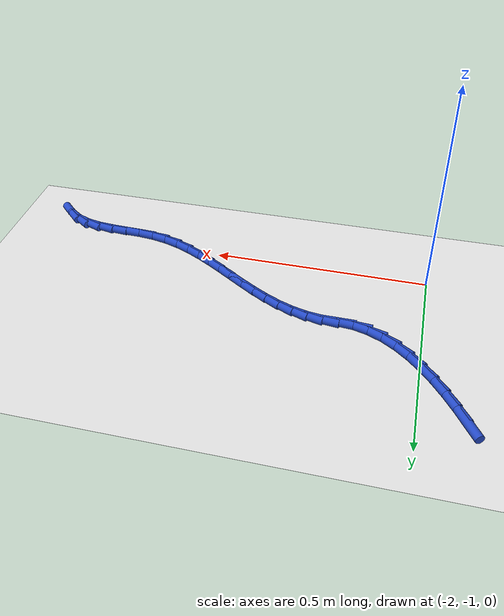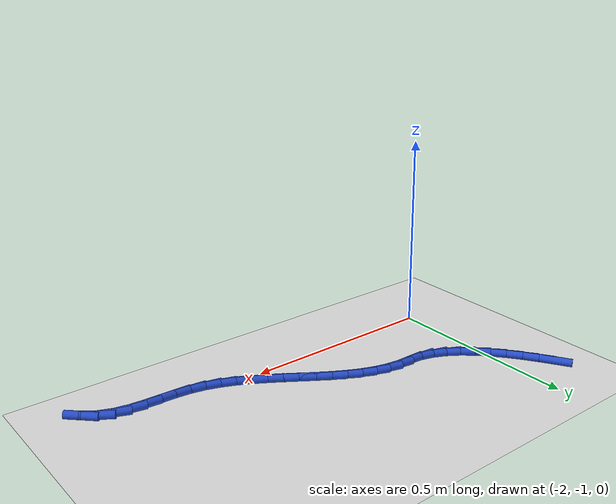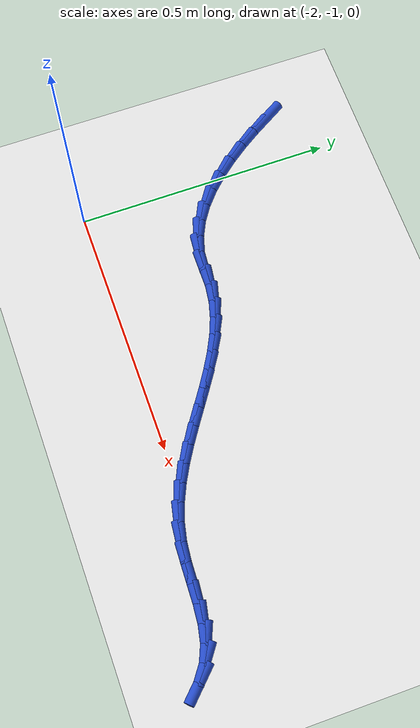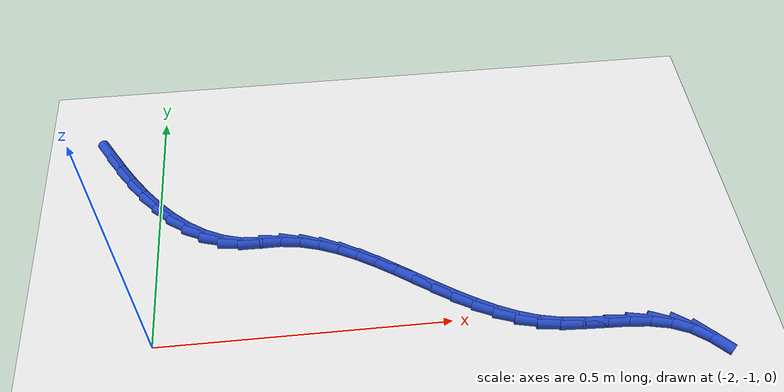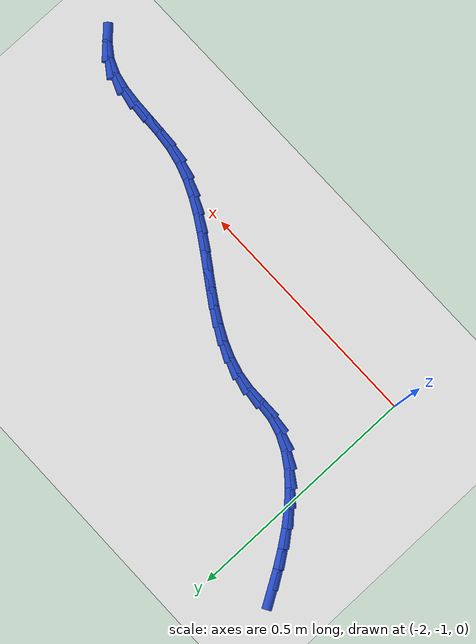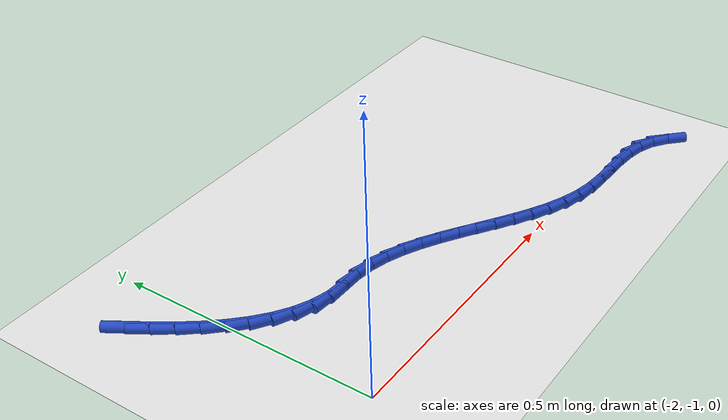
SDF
<sdf version="1.6">
 <world name="default">
  <model name="ground_plane">
   <static>1</static>
   <link name="link">
    <collision name="collision">
     <geometry><plane><normal>0 0 1</normal><size>100 100</size></plane></geometry>
     <surface><friction><ode><mu>100</mu><mu2>50</mu2></ode></friction></surface>
    </collision>
    <visual name="visual">
     <cast_shadows>0</cast_shadows>
     <geometry><plane><normal>0 0 1</normal><size>100 100</size></plane></geometry>
     <material>
      <script><uri>file://media/materials/scripts/gazebo.material</uri><name>Gazebo/WhiteGlow</name></script>
     </material>
    </visual>
   </link>
  </model>
  <model name="line">
   <link name="link_117">
    <pose>-2.0967612584904276 -0.5816487043468608 0.01 0 1.57 -1.026346775162971</pose>
    <collision name="collision">
     <geometry><cylinder><radius>0.01</radius><length>0.08</length></cylinder></geometry>
    </collision>
    <visual name="visual">
     <material>
      <script><name>Gazebo/Blue</name><uri>file://media/materials/scripts/gazebo.material</uri></script>
     </material>
     <geometry><cylinder><radius>0.01</radius><length>0.08</length></cylinder></geometry>
    </visual>
   </link>
   <link name="link_118">
    <pose>-2.075956192161613 -0.6160091769234844 0.01 0 1.57 -0.9868842924403274</pose>
    <collision name="collision">
     <geometry><cylinder><radius>0.01</radius><length>0.08</length></cylinder></geometry>
    </collision>
    <visual name="visual">
     <material>
      <script><name>Gazebo/Blue</name><uri>file://media/materials/scripts/gazebo.material</uri></script>
     </material>
     <geometry><cylinder><radius>0.01</radius><length>0.08</length></cylinder></geometry>
    </visual>
   </link>
   <link name="link_119">
    <pose>-2.053675391737446 -0.6497284167030662 0.01 0 1.57 -0.9375620112988987</pose>
    <collision name="collision">
     <geometry><cylinder><radius>0.01</radius><length>0.08</length></cylinder></geometry>
    </collision>
    <visual name="visual">
     <material>
      <script><name>Gazebo/Blue</name><uri>file://media/materials/scripts/gazebo.material</uri></script>
     </material>
     <geometry><cylinder><radius>0.01</radius><length>0.08</length></cylinder></geometry>
    </visual>
   </link>
   <link name="link_120">
    <pose>-2.0298889016848687 -0.6821315401438209 0.01 0 1.57 -0.8757810528251249</pose>
    <collision name="collision">
     <geometry><cylinder><radius>0.01</radius><length>0.08</length></cylinder></geometry>
    </collision>
    <visual name="visual">
     <material>
      <script><name>Gazebo/Blue</name><uri>file://media/materials/scripts/gazebo.material</uri></script>
     </material>
     <geometry><cylinder><radius>0.01</radius><length>0.08</length></cylinder></geometry>
    </visual>
   </link>
   <link name="link_121">
    <pose>-2.004563780046265 -0.7125045751917276 0.01 0 1.57 -0.7988273500661829</pose>
    <collision name="collision">
     <geometry><cylinder><radius>0.01</radius><length>0.08</length></cylinder></geometry>
    </collision>
    <visual name="visual">
     <material>
      <script><name>Gazebo/Blue</name><uri>file://media/materials/scripts/gazebo.material</uri></script>
     </material>
     <geometry><cylinder><radius>0.01</radius><length>0.08</length></cylinder></geometry>
    </visual>
   </link>
   <link name="link_122">
    <pose>-1.9776670848640172 -0.7401335497927646 0.01 0 1.57 -0.7033709067327094</pose>
    <collision name="collision">
     <geometry><cylinder><radius>0.01</radius><length>0.08</length></cylinder></geometry>
    </collision>
    <visual name="visual">
     <material>
      <script><name>Gazebo/Blue</name><uri>file://media/materials/scripts/gazebo.material</uri></script>
     </material>
     <geometry><cylinder><radius>0.01</radius><length>0.08</length></cylinder></geometry>
    </visual>
   </link>
   <link name="link_123">
    <pose>-1.9491658741805098 -0.7643044918929109 0.01 0 1.57 -0.5858515808385395</pose>
    <collision name="collision">
     <geometry><cylinder><radius>0.01</radius><length>0.08</length></cylinder></geometry>
    </collision>
    <visual name="visual">
     <material>
      <script><name>Gazebo/Blue</name><uri>file://media/materials/scripts/gazebo.material</uri></script>
     </material>
     <geometry><cylinder><radius>0.01</radius><length>0.08</length></cylinder></geometry>
    </visual>
   </link>
   <link name="link_124">
    <pose>-1.9190272060381253 -0.7843034294381451 0.01 0 1.57 -0.4435420542736902</pose>
    <collision name="collision">
     <geometry><cylinder><radius>0.01</radius><length>0.08</length></cylinder></geometry>
    </collision>
    <visual name="visual">
     <material>
      <script><name>Gazebo/Blue</name><uri>file://media/materials/scripts/gazebo.material</uri></script>
     </material>
     <geometry><cylinder><radius>0.01</radius><length>0.08</length></cylinder></geometry>
    </visual>
   </link>
   <link name="link_125">
    <pose>-1.8872181384792484 -0.7994163903744465 0.01 0 1.57 -0.2765894480821556</pose>
    <collision name="collision">
     <geometry><cylinder><radius>0.01</radius><length>0.08</length></cylinder></geometry>
    </collision>
    <visual name="visual">
     <material>
      <script><name>Gazebo/Blue</name><uri>file://media/materials/scripts/gazebo.material</uri></script>
     </material>
     <geometry><cylinder><radius>0.01</radius><length>0.08</length></cylinder></geometry>
    </visual>
   </link>
   <link name="link_126">
    <pose>-1.8537057295462616 -0.8089294026477933 0.01 0 1.57 -0.09076059586313809</pose>
    <collision name="collision">
     <geometry><cylinder><radius>0.01</radius><length>0.08</length></cylinder></geometry>
    </collision>
    <visual name="visual">
     <material>
      <script><name>Gazebo/Blue</name><uri>file://media/materials/scripts/gazebo.material</uri></script>
     </material>
     <geometry><cylinder><radius>0.01</radius><length>0.08</length></cylinder></geometry>
    </visual>
   </link>
   <link name="link_127">
    <pose>-1.8184591965226258 -0.8121372119224382 0.01 0 1.57 -0.005946442157574278</pose>
    <collision name="collision">
     <geometry><cylinder><radius>0.01</radius><length>0.08</length></cylinder></geometry>
    </collision>
    <visual name="visual">
     <material>
      <script><name>Gazebo/Blue</name><uri>file://media/materials/scripts/gazebo.material</uri></script>
     </material>
     <geometry><cylinder><radius>0.01</radius><length>0.08</length></cylinder></geometry>
    </visual>
   </link>
   <link name="link_128">
    <pose>-1.7824411352565188 -0.8123513937648934 0.01 0 1.57 -0.13357973537892504</pose>
    <collision name="collision">
     <geometry><cylinder><radius>0.01</radius><length>0.08</length></cylinder></geometry>
    </collision>
    <visual name="visual">
     <material>
      <script><name>Gazebo/Blue</name><uri>file://media/materials/scripts/gazebo.material</uri></script>
     </material>
     <geometry><cylinder><radius>0.01</radius><length>0.08</length></cylinder></geometry>
    </visual>
   </link>
   <link name="link_129">
    <pose>-1.7475742734319828 -0.8170368012425426 0.01 0 1.57 -0.2643157049605651</pose>
    <collision name="collision">
     <geometry><cylinder><radius>0.01</radius><length>0.08</length></cylinder></geometry>
    </collision>
    <visual name="visual">
     <material>
      <script><name>Gazebo/Blue</name><uri>file://media/materials/scripts/gazebo.material</uri></script>
     </material>
     <geometry><cylinder><radius>0.01</radius><length>0.08</length></cylinder></geometry>
    </visual>
   </link>
   <link name="link_130">
    <pose>-1.7138316004098995 -0.8261691881562745 0.01 0 1.57 -0.3739528519358302</pose>
    <collision name="collision">
     <geometry><cylinder><radius>0.01</radius><length>0.08</length></cylinder></geometry>
    </collision>
    <visual name="visual">
     <material>
      <script><name>Gazebo/Blue</name><uri>file://media/materials/scripts/gazebo.material</uri></script>
     </material>
     <geometry><cylinder><radius>0.01</radius><length>0.08</length></cylinder></geometry>
    </visual>
   </link>
   <link name="link_131">
    <pose>-1.6810117189601268 -0.8390482898473213 0.01 0 1.57 -0.4605600540448028</pose>
    <collision name="collision">
     <geometry><cylinder><radius>0.01</radius><length>0.08</length></cylinder></geometry>
    </collision>
    <visual name="visual">
     <material>
      <script><name>Gazebo/Blue</name><uri>file://media/materials/scripts/gazebo.material</uri></script>
     </material>
     <geometry><cylinder><radius>0.01</radius><length>0.08</length></cylinder></geometry>
    </visual>
   </link>
   <link name="link_132">
    <pose>-1.6489132318525208 -0.8549738416569154 0.01 0 1.57 -0.5245456009540476</pose>
    <collision name="collision">
     <geometry><cylinder><radius>0.01</radius><length>0.08</length></cylinder></geometry>
    </collision>
    <visual name="visual">
     <material>
      <script><name>Gazebo/Blue</name><uri>file://media/materials/scripts/gazebo.material</uri></script>
     </material>
     <geometry><cylinder><radius>0.01</radius><length>0.08</length></cylinder></geometry>
    </visual>
   </link>
   <link name="link_133">
    <pose>-1.6173347418569364 -0.8732455789262878 0.01 0 1.57 -0.567298259454016</pose>
    <collision name="collision">
     <geometry><cylinder><radius>0.01</radius><length>0.08</length></cylinder></geometry>
    </collision>
    <visual name="visual">
     <material>
      <script><name>Gazebo/Blue</name><uri>file://media/materials/scripts/gazebo.material</uri></script>
     </material>
     <geometry><cylinder><radius>0.01</radius><length>0.08</length></cylinder></geometry>
    </visual>
   </link>
   <link name="link_134">
    <pose>-1.5860748517432306 -0.8931632369966712 0.01 0 1.57 -0.5902560747113544</pose>
    <collision name="collision">
     <geometry><cylinder><radius>0.01</radius><length>0.08</length></cylinder></geometry>
    </collision>
    <visual name="visual">
     <material>
      <script><name>Gazebo/Blue</name><uri>file://media/materials/scripts/gazebo.material</uri></script>
     </material>
     <geometry><cylinder><radius>0.01</radius><length>0.08</length></cylinder></geometry>
    </visual>
   </link>
   <link name="link_135">
    <pose>-1.5549321642812601 -0.9140265512092978 0.01 0 1.57 -0.5944216873947582</pose>
    <collision name="collision">
     <geometry><cylinder><radius>0.01</radius><length>0.08</length></cylinder></geometry>
    </collision>
    <visual name="visual">
     <material>
      <script><name>Gazebo/Blue</name><uri>file://media/materials/scripts/gazebo.material</uri></script>
     </material>
     <geometry><cylinder><radius>0.01</radius><length>0.08</length></cylinder></geometry>
    </visual>
   </link>
   <link name="link_136">
    <pose>-1.5237052822408805 -0.935135256905399 0.01 0 1.57 -0.580174360076821</pose>
    <collision name="collision">
     <geometry><cylinder><radius>0.01</radius><length>0.08</length></cylinder></geometry>
    </collision>
    <visual name="visual">
     <material>
      <script><name>Gazebo/Blue</name><uri>file://media/materials/scripts/gazebo.material</uri></script>
     </material>
     <geometry><cylinder><radius>0.01</radius><length>0.08</length></cylinder></geometry>
    </visual>
   </link>
   <link name="link_137">
    <pose>-1.4921928083919473 -0.9557890894262066 0.01 0 1.57 -0.547262093443724</pose>
    <collision name="collision">
     <geometry><cylinder><radius>0.01</radius><length>0.08</length></cylinder></geometry>
    </collision>
    <visual name="visual">
     <material>
      <script><name>Gazebo/Blue</name><uri>file://media/materials/scripts/gazebo.material</uri></script>
     </material>
     <geometry><cylinder><radius>0.01</radius><length>0.08</length></cylinder></geometry>
    </visual>
   </link>
   <link name="link_138">
    <pose>-1.4601933455043172 -0.9752877841129531 0.01 0 1.57 -0.49494029161757</pose>
    <collision name="collision">
     <geometry><cylinder><radius>0.01</radius><length>0.08</length></cylinder></geometry>
    </collision>
    <visual name="visual">
     <material>
      <script><name>Gazebo/Blue</name><uri>file://media/materials/scripts/gazebo.material</uri></script>
     </material>
     <geometry><cylinder><radius>0.01</radius><length>0.08</length></cylinder></geometry>
    </visual>
   </link>
   <link name="link_139">
    <pose>-1.4275054963478462 -0.9929310763068702 0.01 0 1.57 -0.42230125650093964</pose>
    <collision name="collision">
     <geometry><cylinder><radius>0.01</radius><length>0.08</length></cylinder></geometry>
    </collision>
    <visual name="visual">
     <material>
      <script><name>Gazebo/Blue</name><uri>file://media/materials/scripts/gazebo.material</uri></script>
     </material>
     <geometry><cylinder><radius>0.01</radius><length>0.08</length></cylinder></geometry>
    </visual>
   </link>
   <link name="link_140">
    <pose>-1.3939278636923904 -1.0080187013491897 0.01 0 1.57 -0.32888337218650066</pose>
    <collision name="collision">
     <geometry><cylinder><radius>0.01</radius><length>0.08</length></cylinder></geometry>
    </collision>
    <visual name="visual">
     <material>
      <script><name>Gazebo/Blue</name><uri>file://media/materials/scripts/gazebo.material</uri></script>
     </material>
     <geometry><cylinder><radius>0.01</radius><length>0.08</length></cylinder></geometry>
    </visual>
   </link>
   <link name="link_141">
    <pose>-1.3592590503078072 -1.0198503945811441 0.01 0 1.57 -0.21562896937108425</pose>
    <collision name="collision">
     <geometry><cylinder><radius>0.01</radius><length>0.08</length></cylinder></geometry>
    </collision>
    <visual name="visual">
     <material>
      <script><name>Gazebo/Blue</name><uri>file://media/materials/scripts/gazebo.material</uri></script>
     </material>
     <geometry><cylinder><radius>0.01</radius><length>0.08</length></cylinder></geometry>
    </visual>
   </link>
   <link name="link_142">
    <pose>-1.3232981033802644 -1.0277270742401907 0.01 0 1.57 -0.1041851417068405</pose>
    <collision name="collision">
     <geometry><cylinder><radius>0.01</radius><length>0.08</length></cylinder></geometry>
    </collision>
    <visual name="visual">
     <material>
      <script><name>Gazebo/Blue</name><uri>file://media/materials/scripts/gazebo.material</uri></script>
     </material>
     <geometry><cylinder><radius>0.01</radius><length>0.08</length></cylinder></geometry>
    </visual>
   </link>
   <link name="link_143">
    <pose>-1.2860948608895526 -1.031617184651404 0.01 0 1.57 -0.04375514275915762</pose>
    <collision name="collision">
     <geometry><cylinder><radius>0.01</radius><length>0.08</length></cylinder></geometry>
    </collision>
    <visual name="visual">
     <material>
      <script><name>Gazebo/Blue</name><uri>file://media/materials/scripts/gazebo.material</uri></script>
     </material>
     <geometry><cylinder><radius>0.01</radius><length>0.08</length></cylinder></geometry>
    </visual>
   </link>
   <link name="link_144">
    <pose>-1.248367842448936 -1.0332689899977228 0.01 0 1.57 -0.03886604586691964</pose>
    <collision name="collision">
     <geometry><cylinder><radius>0.01</radius><length>0.08</length></cylinder></geometry>
    </collision>
    <visual name="visual">
     <material>
      <script><name>Gazebo/Blue</name><uri>file://media/materials/scripts/gazebo.material</uri></script>
     </material>
     <geometry><cylinder><radius>0.01</radius><length>0.08</length></cylinder></geometry>
    </visual>
   </link>
   <link name="link_145">
    <pose>-1.2109458042258217 -1.0347241694421068 0.01 0 1.57 -0.090695313111418</pose>
    <collision name="collision">
     <geometry><cylinder><radius>0.01</radius><length>0.08</length></cylinder></geometry>
    </collision>
    <visual name="visual">
     <material>
      <script><name>Gazebo/Blue</name><uri>file://media/materials/scripts/gazebo.material</uri></script>
     </material>
     <geometry><cylinder><radius>0.01</radius><length>0.08</length></cylinder></geometry>
    </visual>
   </link>
   <link name="link_146">
    <pose>-1.1746575023876156 -1.0380244021475153 0.01 0 1.57 -0.20639348415992514</pose>
    <collision name="collision">
     <geometry><cylinder><radius>0.01</radius><length>0.08</length></cylinder></geometry>
    </collision>
    <visual name="visual">
     <material>
      <script><name>Gazebo/Blue</name><uri>file://media/materials/scripts/gazebo.material</uri></script>
     </material>
     <geometry><cylinder><radius>0.01</radius><length>0.08</length></cylinder></geometry>
    </visual>
   </link>
   <link name="link_147">
    <pose>-1.140331693101725 -1.0452113672769074 0.01 0 1.57 -0.39414173976718</pose>
    <collision name="collision">
     <geometry><cylinder><radius>0.01</radius><length>0.08</length></cylinder></geometry>
    </collision>
    <visual name="visual">
     <material>
      <script><name>Gazebo/Blue</name><uri>file://media/materials/scripts/gazebo.material</uri></script>
     </material>
     <geometry><cylinder><radius>0.01</radius><length>0.08</length></cylinder></geometry>
    </visual>
   </link>
   <link name="link_148">
    <pose>-1.108797131431946 -1.0583267413657647 0.01 0 1.57 -0.6228352703912476</pose>
    <collision name="collision">
     <geometry><cylinder><radius>0.01</radius><length>0.08</length></cylinder></geometry>
    </collision>
    <visual name="visual">
     <material>
      <script><name>Gazebo/Blue</name><uri>file://media/materials/scripts/gazebo.material</uri></script>
     </material>
     <geometry><cylinder><radius>0.01</radius><length>0.08</length></cylinder></geometry>
    </visual>
   </link>
   <link name="link_149">
    <pose>-1.0805478582613468 -1.0786153131730916 0.01 0 1.57 -0.783661849155396</pose>
    <collision name="collision">
     <geometry><cylinder><radius>0.01</radius><length>0.08</length></cylinder></geometry>
    </collision>
    <visual name="visual">
     <material>
      <script><name>Gazebo/Blue</name><uri>file://media/materials/scripts/gazebo.material</uri></script>
     </material>
     <geometry><cylinder><radius>0.01</radius><length>0.08</length></cylinder></geometry>
    </visual>
   </link>
  </model>
 </world>
</sdf>
